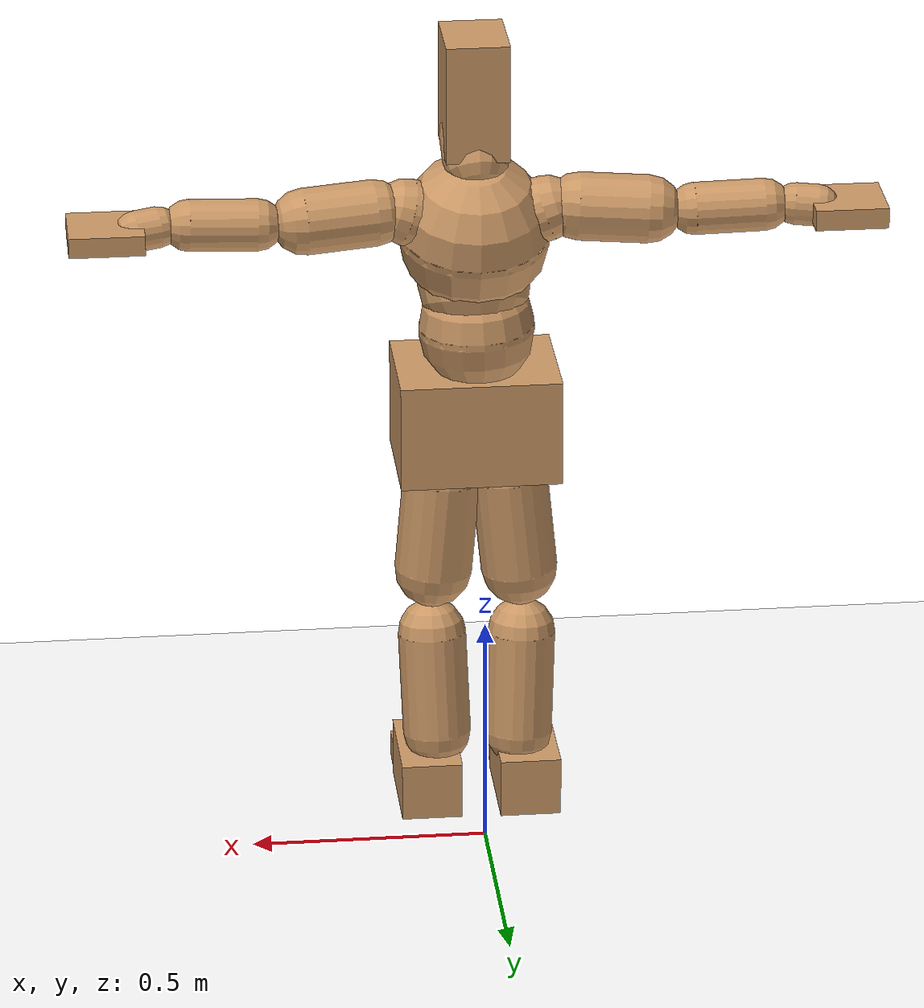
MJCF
<mujoco model="humanoid">
  <option integrator="implicitfast" />

  <visual>
    <global offwidth="1280" offheight="960" />
    <headlight active="1" ambient="0.34 0.34 0.34" diffuse="0.5 0.5 0.5" />
  </visual>

  <default>
    <joint damping="2" stiffness="2" armature="0.01" limited="true" solimplimit="0 .99 .01" />
    <geom condim="1" friction="0.7 0.005 0.0001" solimp=".99 .99 .003" solref="0.015 1" margin="0.001" rgba="0.8 0.6 .4 1" />
    <default class="smplcontact">
      <geom condim="3" friction="1. 0.005 0.0001" solref="0.015 1" solimp="0.98 0.98 0.001" priority="1" />
    </default>
    <default class="stiff_medium">
      <joint stiffness="10" />
    </default>
    <default class="stiff_medium_higher">
      <joint stiffness="50" />
    </default>
    <default class="stiff_high">
      <joint stiffness="100" />
    </default>
  </default>

  <asset>
    <texture type="skybox" builtin="gradient" rgb1="0.99 0.99 0.99" rgb2="0.608 0.828 0.892" width="100" />
    <texture builtin="flat" height="1278" mark="cross" markrgb="1 1 1" name="texgeom" random="0.01" rgb1="0.8 0.6 0.4" rgb2="0.8 0.6 0.4" type="cube" width="127" />
    <texture name="texplane" type="2d" builtin="checker" markrgb="1 1 1" rgb1="0.756 0.772 0.76" rgb2="0.6 0.6 0.6" width="100" height="100" />
    <material name="MatPlane" reflectance="0.5" texture="texplane" texrepeat="1 1" texuniform="true" />
    <material name="geom" texture="texgeom" texuniform="true" />
  </asset>

  <worldbody>
    <light name="tracking_light" pos="0 0 7" dir="0 0 -1" directional="true" cutoff="100" exponent="1" diffuse="1 1 1" specular="0.1 0.1 0.1" mode="trackcom" />
    <camera name="back" pos="0 3 2.4" xyaxes="-1 0 0 0 -1 2" mode="trackcom" />
    <camera name="side" pos="-3 0 2.4" xyaxes="0 -1 0 1 0 2" mode="trackcom" />
    <camera name="front_side" pos="-2.8 -2.8 0.8" xyaxes="0.5 -0.5 0 0.1 0.1 1" mode="trackcom" />
    <geom condim="3" name="floor" pos="0 0 0" rgba="1 1 1 1" size="100 100 .2" type="plane" material="MatPlane" />
    <body name="Pelvis" pos="-0.0018 -0.2233 0.908985" euler="90 0 0">
      <site name="Pelvis" size="0.01" />
      <freejoint name="Pelvis" />
      <geom type="box" pos="-0.0000 -0.0121 -0.0055" size="0.17104 0.11552 0.1328" quat="1.0000 0.0000 0.0000 0.0000" density="3165.830099" name="Pelvis" />
      <body name="L_Hip" pos="0.066025 -0.08683 -0.00646">
        <joint name="L_Hip_x" type="hinge" pos="0 0 0" axis="1 0 0" stiffness="15.6257" range="-160.0 22.92" class="stiff_medium" damping="23.4385" armature="0.0156257" />
        <joint name="L_Hip_y" type="hinge" pos="0 0 0" axis="0 1 0" stiffness="15.6257" range="-70.0 70.0" class="stiff_medium" damping="15.6257" armature="0.0156257" />
        <joint name="L_Hip_z" type="hinge" pos="0 0 0" axis="0 0 1" stiffness="15.6257" range="-28.65 90.0" class="stiff_medium" damping="15.6257" armature="0.0156257" />
        <geom type="capsule" density="2040.816327" fromto="0.006555 -0.07125 -0.000855 0.02603 -0.28519 -0.00342" size="0.083025" name="L_Hip" />
        <body name="L_Knee" pos="0.032585 -0.35644 -0.004275">
          <joint name="L_Knee_x" type="hinge" pos="0 0 0" axis="1 0 0" range="-5.16 171.89" damping="12.5005" stiffness="3.12513" armature="0.0156257" />
          <joint name="L_Knee_y" type="hinge" pos="0 0 0" axis="0 1 0" range="-4.58 6.88" damping="12.5005" stiffness="3.12513" armature="0.0156257" />
          <joint name="L_Knee_z" type="hinge" pos="0 0 0" axis="0 0 1" range="-6.88 4.58" damping="12.5005" stiffness="3.12513" armature="0.0156257" />
          <geom type="capsule" density="1234.567901" fromto="-0.002565 -0.07562 -0.008265 -0.010355 -0.30248 -0.03325" size="0.073035" name="L_Knee" />
          <body name="L_Ankle" pos="-0.01292 -0.3781 -0.041515">
            <joint name="L_Ankle_x" type="hinge" pos="0 0 0" axis="1 0 0" range="-45.84 45.84" class="stiff_medium" damping="9.3754" stiffness="15.6257" armature="0.0156257" />
            <joint name="L_Ankle_y" type="hinge" pos="0 0 0" axis="0 1 0" range="-74.48 22.92" class="stiff_medium" damping="4.6877" stiffness="15.6257" armature="0.0156257" />
            <joint name="L_Ankle_z" type="hinge" pos="0 0 0" axis="0 0 1" range="-4.58 4.58" class="stiff_medium" damping="9.3754" stiffness="15.6257" armature="0.0156257" />
            <geom type="box" pos="0.022135 -0.022705 0.02299" size="0.065205 0.06264 0.11475" quat="1.0000 0.0000 0.0000 0.0000" density="449.071558" name="L_Ankle" class="smplcontact" />
            <body name="L_Toe" pos="0.02508 -0.05301 0.113335">
              <joint name="L_Toe_x" type="hinge" pos="0 0 0" axis="1 0 0" range="-91.67 22.92" stiffness="3.12513" armature="0.0156257" />
              <joint name="L_Toe_y" type="hinge" pos="0 0 0" axis="0 1 0" range="-4.58 4.58" stiffness="3.12513" armature="0.0156257" />
              <joint name="L_Toe_z" type="hinge" pos="0 0 0" axis="0 0 1" range="-4.58 4.58" stiffness="3.12513" armature="0.0156257" />
              <geom type="box" pos="-0.00285 0.005225 0.02356" size="0.06453 0.027 0.06696" quat="1.0000 0.0000 0.0000 0.0000" density="423.206892" name="L_Toe" class="smplcontact" />
            </body>
          </body>
        </body>
      </body>
      <body name="R_Hip" pos="-0.064315 -0.085975 -0.004085">
        <joint name="R_Hip_x" type="hinge" pos="0 0 0" axis="1 0 0" stiffness="15.6257" range="-160.0 22.92" class="stiff_medium" damping="23.4385" armature="0.0156257" />
        <joint name="R_Hip_y" type="hinge" pos="0 0 0" axis="0 1 0" stiffness="15.6257" range="-70.0 70.0" class="stiff_medium" damping="15.6257" armature="0.0156257" />
        <joint name="R_Hip_z" type="hinge" pos="0 0 0" axis="0 0 1" stiffness="15.6257" range="-90.0 28.65" class="stiff_medium" damping="15.6257" armature="0.0156257" />
        <geom type="capsule" density="2040.816327" fromto="-0.007315 -0.072675 -0.00171 -0.02907 -0.290795 -0.006745" size="0.08181" name="R_Hip" />
        <body name="R_Knee" pos="-0.036385 -0.36347 -0.008455">
          <joint name="R_Knee_x" type="hinge" pos="0 0 0" axis="1 0 0" range="-5.16 171.89" damping="12.5005" stiffness="3.12513" armature="0.0156257" />
          <joint name="R_Knee_y" type="hinge" pos="0 0 0" axis="0 1 0" range="-6.88 4.58" damping="12.5005" stiffness="3.12513" armature="0.0156257" />
          <joint name="R_Knee_z" type="hinge" pos="0 0 0" axis="0 0 1" range="-4.58 6.88" damping="12.5005" stiffness="3.12513" armature="0.0156257" />
          <geom type="capsule" density="1234.567901" fromto="0.00304 -0.075715 -0.008075 0.01197 -0.302765 -0.03211" size="0.073035" name="R_Knee" />
          <body name="R_Ankle" pos="0.01501 -0.37848 -0.040185">
            <joint name="R_Ankle_x" type="hinge" pos="0 0 0" axis="1 0 0" range="-45.84 45.84" class="stiff_medium" damping="9.3754" stiffness="15.6257" armature="0.0156257" />
            <joint name="R_Ankle_y" type="hinge" pos="0 0 0" axis="0 1 0" range="-22.92 74.48" class="stiff_medium" damping="4.6877" stiffness="15.6257" armature="0.0156257" />
            <joint name="R_Ankle_z" type="hinge" pos="0 0 0" axis="0 0 1" range="-4.58 4.58" class="stiff_medium" damping="9.3754" stiffness="15.6257" armature="0.0156257" />
            <geom type="box" pos="-0.02014 -0.01653 0.02432" size="0.065205 0.06453 0.116775" quat="1.0000 0.0000 0.0000 0.0000" density="434.700981" name="R_Ankle" class="smplcontact" />
            <body name="R_Toe" pos="-0.02413 -0.045695 0.117135">
              <joint name="R_Toe_x" type="hinge" pos="0 0 0" axis="1 0 0" range="-91.67 22.92" stiffness="3.12513" armature="0.0156257" />
              <joint name="R_Toe_y" type="hinge" pos="0 0 0" axis="0 1 0" range="-4.58 4.58" stiffness="3.12513" armature="0.0156257" />
              <joint name="R_Toe_z" type="hinge" pos="0 0 0" axis="0 0 1" range="-4.58 4.58" stiffness="3.12513" armature="0.0156257" />
              <geom type="box" pos="0.00399 0.004275 0.021565" size="0.064665 0.02916 0.066555" quat="1.0000 0.0000 0.0000 0.0000" density="407.384095" name="R_Toe" class="smplcontact" />
            </body>
          </body>
        </body>
      </body>
      <body name="Torso" pos="-0.00275 0.1199 -0.02937">
        <joint name="Torso_x" type="hinge" pos="0 0 0" axis="1 0 0" range="-25.78 57.3" class="stiff_medium" damping="51.1104" stiffness="34.0736" armature="0.0340736" />
        <joint name="Torso_y" type="hinge" pos="0 0 0" axis="0 1 0" range="-57.3 57.3" class="stiff_high" damping="68.1472" stiffness="340.736" armature="0.0340736" />
        <joint name="Torso_z" type="hinge" pos="0 0 0" axis="0 0 1" range="-34.38 34.38" class="stiff_high" damping="68.1472" stiffness="340.736" armature="0.0340736" />
        <geom type="capsule" density="2040.816327" fromto="0.00275 0.06688 0.00055 0.0033 0.08173 0.00066" size="0.12304" name="Torso" />
        <body name="Spine" pos="0.00605 0.14872 0.00121">
          <joint name="Spine_x" type="hinge" pos="0 0 0" axis="1 0 0" stiffness="34.0736" range="-25.78 57.3" class="stiff_medium" damping="51.1104" armature="0.0340736" />
          <joint name="Spine_y" type="hinge" pos="0 0 0" axis="0 1 0" stiffness="34.0736" range="-57.3 57.3" class="stiff_high" damping="27.2589" armature="0.0340736" />
          <joint name="Spine_z" type="hinge" pos="0 0 0" axis="0 0 1" stiffness="68.1472" range="-34.38 34.38" class="stiff_high" damping="40.8883" armature="0.0340736" />
          <geom type="capsule" density="2040.816327" fromto="0.00077 0.02618 0.01254 0.00088 0.03201 0.0154" size="0.1208" name="Spine" />
          <body name="Chest" pos="0.00165 0.05819 0.02794">
            <joint name="Chest_x" type="hinge" pos="0 0 0" axis="1 0 0" stiffness="34.0736" range="-25.78 57.3" class="stiff_medium" damping="51.1104" armature="0.0340736" />
            <joint name="Chest_y" type="hinge" pos="0 0 0" axis="0 1 0" stiffness="34.0736" range="-57.3 57.3" class="stiff_high" damping="27.2589" armature="0.0340736" />
            <joint name="Chest_z" type="hinge" pos="0 0 0" axis="0 0 1" stiffness="68.1472" range="-34.38 34.38" class="stiff_high" damping="40.8883" armature="0.0340736" />
            <geom type="capsule" density="2040.816327" fromto="-0.00099 0.07502 -0.01903 -0.0011 0.09163 -0.02332" size="0.16032" name="Chest" />
            <body name="Neck" pos="-0.00308 0.23529 -0.04719">
              <joint name="Neck_x" type="hinge" pos="0 0 0" axis="1 0 0" range="-28.65 57.3" class="stiff_medium_higher" damping="34.0736" stiffness="170.368" armature="0.0340736" />
              <joint name="Neck_y" type="hinge" pos="0 0 0" axis="0 1 0" range="-40.11 40.11" class="stiff_medium_higher" damping="34.0736" stiffness="170.368" armature="0.0340736" />
              <joint name="Neck_z" type="hinge" pos="0 0 0" axis="0 0 1" range="-40.11 40.11" class="stiff_medium_higher" damping="34.0736" stiffness="170.368" armature="0.0340736" />
              <geom type="capsule" density="1000" fromto="0.0011 0.0143 0.01133 0.00451 0.0572 0.04521" size="0.06976" name="Neck" />
              <body name="Head" pos="0.0052 0.065 0.0513">
                <joint name="Head_x" type="hinge" pos="0 0 0" axis="1 0 0" range="-28.65 57.3" class="stiff_medium_higher" damping="2.42" stiffness="60.5" armature="0.0121" />
                <joint name="Head_y" type="hinge" pos="0 0 0" axis="0 1 0" range="-40.11 40.11" class="stiff_medium_higher" damping="2.42" stiffness="60.5" armature="0.0121" />
                <joint name="Head_z" type="hinge" pos="0 0 0" axis="0 0 1" range="-40.11 40.11" class="stiff_medium_higher" damping="2.42" stiffness="60.5" armature="0.0121" />
                <geom type="box" pos="-0.0042 0.0876 -0.0116" size="0.06666 0.12694 0.0836" quat="1.0000 0.0000 0.0000 0.0000" density="1018.069894" name="Head" />
                <geom type="capsule" name="nose" size="0.022 0.011" pos="0 0.07 0.05" quat="1 0 0 0" mass="0" contype="0" conaffinity="0" />
              </body>
            </body>
            <body name="L_Thorax" pos="0.07486 0.115615 -0.032395">
              <joint name="L_Thorax_x" type="hinge" pos="0 0 0" axis="1 0 0" range="-10.89 4.58" class="stiff_medium_higher" damping="31.2513" stiffness="78.1283" armature="0.0156257" />
              <joint name="L_Thorax_y" type="hinge" pos="0 0 0" axis="0 1 0" range="-28.65 17.19" class="stiff_medium_higher" damping="31.2513" stiffness="78.1283" armature="0.0156257" />
              <joint name="L_Thorax_z" type="hinge" pos="0 0 0" axis="0 0 1" range="-31.51 40.11" class="stiff_medium_higher" damping="31.2513" stiffness="78.1283" armature="0.0156257" />
              <geom type="capsule" density="1000" fromto="0.01729 0.005795 -0.00171 0.06916 0.02318 -0.006745" size="0.070335" name="L_Thorax" />
              <body name="L_Shoulder" pos="0.08645 0.028975 -0.008455">
                <joint name="L_Shoulder_x" type="hinge" pos="0 0 0" axis="1 0 0" range="-97.4 97.4" class="stiff_medium" damping="9.3754" stiffness="15.6257" armature="0.0156257" />
                <joint name="L_Shoulder_y" type="hinge" pos="0 0 0" axis="0 1 0" range="-108.86 80.21" class="stiff_medium" damping="9.3754" stiffness="15.6257" armature="0.0156257" />
                <joint name="L_Shoulder_z" type="hinge" pos="0 0 0" axis="0 0 1" range="-97.4 85.94" class="stiff_medium" damping="9.3754" stiffness="15.6257" armature="0.0156257" />
                <geom type="capsule" density="1000" fromto="0.049305 -0.00247 -0.005225 0.197315 -0.00969 -0.0209" size="0.069795" name="L_Shoulder" />
                <body name="L_Elbow" pos="0.24662 -0.01216 -0.026125">
                  <joint name="L_Elbow_x" type="hinge" pos="0 0 0" axis="1 0 0" range="-17.19 4.58" damping="7.81283" stiffness="3.12513" armature="0.0156257" />
                  <joint name="L_Elbow_y" type="hinge" pos="0 0 0" axis="0 1 0" range="-180.0 17.19" damping="7.81283" stiffness="3.12513" armature="0.0156257" />
                  <joint name="L_Elbow_z" type="hinge" pos="0 0 0" axis="0 0 1" range="-100.84 4.58" damping="7.81283" stiffness="3.12513" armature="0.0156257" />
                  <geom type="capsule" density="1000" fromto="0.04731 0.00171 -0.00019 0.18943 0.00684 -0.000855" size="0.054675" name="L_Elbow" />
                  <body name="L_Wrist" pos="0.23674 0.00855 -0.00114">
                    <joint name="L_Wrist_x" type="hinge" pos="0 0 0" axis="1 0 0" range="-180.0 22.92" stiffness="3.12513" armature="0.0156257" />
                    <joint name="L_Wrist_y" type="hinge" pos="0 0 0" axis="0 1 0" range="-17.19 17.19" stiffness="3.12513" armature="0.0156257" />
                    <joint name="L_Wrist_z" type="hinge" pos="0 0 0" axis="0 0 1" range="-22.92 22.92" stiffness="3.12513" armature="0.0156257" />
                    <geom type="capsule" density="1000" fromto="0.01596 -0.00152 -0.00285 0.06384 -0.006175 -0.0114" size="0.04293" name="L_Wrist" class="smplcontact" />
                    <body name="L_Hand" pos="0.0798 -0.00779 -0.014155">
                      <joint name="L_Hand_x" type="hinge" pos="0 0 0" axis="1 0 0" range="-17.19 17.19" stiffness="3.12513" armature="0.0156257" />
                      <joint name="L_Hand_y" type="hinge" pos="0 0 0" axis="0 1 0" range="-51.57 51.57" stiffness="3.12513" armature="0.0156257" />
                      <joint name="L_Hand_z" type="hinge" pos="0 0 0" axis="0 0 1" range="-91.67 91.67" stiffness="3.12513" armature="0.0156257" />
                      <geom type="box" pos="0.046835 0.00095 -0.00551" size="0.078975 0.02133 0.07263" quat="1.0000 0.0000 0.0000 0.0000" density="400.552564" name="L_Hand" class="smplcontact" />
                    </body>
                  </body>
                </body>
              </body>
            </body>
            <body name="R_Thorax" pos="-0.07771 0.11286 -0.03667">
              <joint name="R_Thorax_x" type="hinge" pos="0 0 0" axis="1 0 0" range="-10.89 4.58" class="stiff_medium_higher" damping="31.2513" stiffness="78.1283" armature="0.0156257" />
              <joint name="R_Thorax_y" type="hinge" pos="0 0 0" axis="0 1 0" range="-17.19 28.65" class="stiff_medium_higher" damping="31.2513" stiffness="78.1283" armature="0.0156257" />
              <joint name="R_Thorax_z" type="hinge" pos="0 0 0" axis="0 0 1" range="-40.11 31.51" class="stiff_medium_higher" damping="31.2513" stiffness="78.1283" armature="0.0156257" />
              <geom type="capsule" density="1000" fromto="-0.01824 0.006175 -0.00171 -0.07296 0.0247 -0.006935" size="0.068985" name="R_Thorax" />
              <body name="R_Shoulder" pos="-0.0912 0.03097 -0.008645">
                <joint name="R_Shoulder_x" type="hinge" pos="0 0 0" axis="1 0 0" range="-97.4 97.4" class="stiff_medium" damping="9.3754" stiffness="15.6257" armature="0.0156257" />
                <joint name="R_Shoulder_y" type="hinge" pos="0 0 0" axis="0 1 0" range="-80.21 108.86" class="stiff_medium" damping="9.3754" stiffness="15.6257" armature="0.0156257" />
                <joint name="R_Shoulder_z" type="hinge" pos="0 0 0" axis="0 0 1" range="-85.94 97.4" class="stiff_medium" damping="9.3754" stiffness="15.6257" armature="0.0156257" />
                <geom type="capsule" density="1000" fromto="-0.048165 -0.002565 -0.004085 -0.19285 -0.010165 -0.016245" size="0.071685" name="R_Shoulder" />
                <body name="R_Elbow" pos="-0.241015 -0.012635 -0.02033">
                  <joint name="R_Elbow_x" type="hinge" pos="0 0 0" axis="1 0 0" range="-17.19 4.58" damping="7.81283" stiffness="3.12513" armature="0.0156257" />
                  <joint name="R_Elbow_y" type="hinge" pos="0 0 0" axis="0 1 0" range="-17.19 180.0" damping="7.81283" stiffness="3.12513" armature="0.0156257" />
                  <joint name="R_Elbow_z" type="hinge" pos="0 0 0" axis="0 0 1" range="-4.58 100.84" damping="7.81283" stiffness="3.12513" armature="0.0156257" />
                  <geom type="capsule" density="1000" fromto="-0.048545 0.00152 -0.001045 -0.19399 0.00589 -0.00418" size="0.05508" name="R_Elbow" />
                  <body name="R_Wrist" pos="-0.242535 0.00741 -0.00532">
                    <joint name="R_Wrist_x" type="hinge" pos="0 0 0" axis="1 0 0" range="-180.0 22.92" stiffness="3.12513" armature="0.0156257" />
                    <joint name="R_Wrist_y" type="hinge" pos="0 0 0" axis="0 1 0" range="-17.19 17.19" stiffness="3.12513" armature="0.0156257" />
                    <joint name="R_Wrist_z" type="hinge" pos="0 0 0" axis="0 0 1" range="-22.92 22.92" stiffness="3.12513" armature="0.0156257" />
                    <geom type="capsule" density="1000" fromto="-0.016055 -0.00114 -0.001995 -0.064315 -0.004655 -0.007885" size="0.04401" name="R_Wrist" class="smplcontact" />
                    <body name="R_Hand" pos="-0.08037 -0.005795 -0.009785">
                      <joint name="R_Hand_x" type="hinge" pos="0 0 0" axis="1 0 0" range="-17.19 17.19" stiffness="3.12513" armature="0.0156257" />
                      <joint name="R_Hand_y" type="hinge" pos="0 0 0" axis="0 1 0" range="-51.57 51.57" stiffness="3.12513" armature="0.0156257" />
                      <joint name="R_Hand_z" type="hinge" pos="0 0 0" axis="0 0 1" range="-91.67 91.67" stiffness="3.12513" armature="0.0156257" />
                      <geom type="box" pos="-0.04389 -0.000855 -0.007505" size="0.076815 0.02214 0.07371" quat="1.0000 0.0000 0.0000 0.0000" density="403.679611" name="R_Hand" class="smplcontact" />
                    </body>
                  </body>
                </body>
              </body>
            </body>
          </body>
        </body>
      </body>
    </body>
  </worldbody>
  <actuator>
    <general name="L_Hip_x" joint="L_Hip_x" biastype="affine" gainprm="287.33006409732246" biasprm="-215.3247604770444 -180 -2.0" ctrllimited="true" ctrlrange="-1 1" forcerange="-360 360" />
    <general name="L_Hip_y" joint="L_Hip_y" biastype="affine" gainprm="219.9114857512855" biasprm="0.0 -180 -2.0" ctrllimited="true" ctrlrange="-1 1" forcerange="-360 360" />
    <general name="L_Hip_z" joint="L_Hip_z" biastype="affine" gainprm="186.3749841742145" biasprm="96.3683546488669 -180 -2.0" ctrllimited="true" ctrlrange="-1 1" forcerange="-360 360" />
    <general name="L_Knee_x" joint="L_Knee_x" biastype="affine" gainprm="278.10948965903646" biasprm="261.8988715665131 -180 -2.0" ctrllimited="true" ctrlrange="-1 1" forcerange="-360 360" />
    <general name="L_Knee_y" joint="L_Knee_y" biastype="affine" gainprm="18.001325905069514" biasprm="3.612831551628262 -180 -2.0" ctrllimited="true" ctrlrange="-1 1" forcerange="-360 360" />
    <general name="L_Knee_z" joint="L_Knee_z" biastype="affine" gainprm="18.001325905069514" biasprm="-3.612831551628262 -180 -2.0" ctrllimited="true" ctrlrange="-1 1" forcerange="-360 360" />
    <general name="L_Ankle_x" joint="L_Ankle_x" biastype="affine" gainprm="72.00530362027807" biasprm="0.0 -90 -2.0" ctrllimited="true" ctrlrange="-1 1" forcerange="-180 180" />
    <general name="L_Ankle_y" joint="L_Ankle_y" biastype="affine" gainprm="76.49778111491148" biasprm="-40.49512930477244 -90 -2.0" ctrllimited="true" ctrlrange="-1 1" forcerange="-180 180" />
    <general name="L_Ankle_z" joint="L_Ankle_z" biastype="affine" gainprm="7.1942471767206255" biasprm="0.0 -90 -2.0" ctrllimited="true" ctrlrange="-1 1" forcerange="-180 180" />
    <general name="L_Toe_x" joint="L_Toe_x" biastype="affine" gainprm="71.99902043497087" biasprm="-43.19689898685965 -72 -0.8" ctrllimited="true" ctrlrange="-1 1" forcerange="-144 144" />
    <general name="L_Toe_y" joint="L_Toe_y" biastype="affine" gainprm="5.755397741376501" biasprm="0.0 -72 -0.8" ctrllimited="true" ctrlrange="-1 1" forcerange="-144 144" />
    <general name="L_Toe_z" joint="L_Toe_z" biastype="affine" gainprm="5.755397741376501" biasprm="0.0 -72 -0.8" ctrllimited="true" ctrlrange="-1 1" forcerange="-144 144" />
    <general name="R_Hip_x" joint="R_Hip_x" biastype="affine" gainprm="287.33006409732246" biasprm="-215.3247604770444 -180 -2.0" ctrllimited="true" ctrlrange="-1 1" forcerange="-360 360" />
    <general name="R_Hip_y" joint="R_Hip_y" biastype="affine" gainprm="219.9114857512855" biasprm="0.0 -180 -2.0" ctrllimited="true" ctrlrange="-1 1" forcerange="-360 360" />
    <general name="R_Hip_z" joint="R_Hip_z" biastype="affine" gainprm="186.3749841742145" biasprm="-96.3683546488669 -180 -2.0" ctrllimited="true" ctrlrange="-1 1" forcerange="-360 360" />
    <general name="R_Knee_x" joint="R_Knee_x" biastype="affine" gainprm="278.10948965903646" biasprm="261.8988715665131 -180 -2.0" ctrllimited="true" ctrlrange="-1 1" forcerange="-360 360" />
    <general name="R_Knee_y" joint="R_Knee_y" biastype="affine" gainprm="18.001325905069514" biasprm="-3.612831551628262 -180 -2.0" ctrllimited="true" ctrlrange="-1 1" forcerange="-360 360" />
    <general name="R_Knee_z" joint="R_Knee_z" biastype="affine" gainprm="18.001325905069514" biasprm="3.612831551628262 -180 -2.0" ctrllimited="true" ctrlrange="-1 1" forcerange="-360 360" />
    <general name="R_Ankle_x" joint="R_Ankle_x" biastype="affine" gainprm="72.00530362027807" biasprm="0.0 -90 -2.0" ctrllimited="true" ctrlrange="-1 1" forcerange="-180 180" />
    <general name="R_Ankle_y" joint="R_Ankle_y" biastype="affine" gainprm="76.49778111491148" biasprm="40.49512930477244 -90 -2.0" ctrllimited="true" ctrlrange="-1 1" forcerange="-180 180" />
    <general name="R_Ankle_z" joint="R_Ankle_z" biastype="affine" gainprm="7.1942471767206255" biasprm="0.0 -90 -2.0" ctrllimited="true" ctrlrange="-1 1" forcerange="-180 180" />
    <general name="R_Toe_x" joint="R_Toe_x" biastype="affine" gainprm="71.99902043497087" biasprm="-43.19689898685965 -72 -0.8" ctrllimited="true" ctrlrange="-1 1" forcerange="-144 144" />
    <general name="R_Toe_y" joint="R_Toe_y" biastype="affine" gainprm="5.755397741376501" biasprm="0.0 -72 -0.8" ctrllimited="true" ctrlrange="-1 1" forcerange="-144 144" />
    <general name="R_Toe_z" joint="R_Toe_z" biastype="affine" gainprm="5.755397741376501" biasprm="0.0 -72 -0.8" ctrllimited="true" ctrlrange="-1 1" forcerange="-144 144" />
    <general name="Torso_x" joint="Torso_x" biastype="affine" gainprm="174.00234510682668" biasprm="66.0153336274335 -240 -4.0" ctrllimited="true" ctrlrange="-1 1" forcerange="-360 360" />
    <general name="Torso_y" joint="Torso_y" biastype="affine" gainprm="240.0176787342602" biasprm="0.0 -240 -4.0" ctrllimited="true" ctrlrange="-1 1" forcerange="-360 360" />
    <general name="Torso_z" joint="Torso_z" biastype="affine" gainprm="144.01060724055614" biasprm="0.0 -240 -4.0" ctrllimited="true" ctrlrange="-1 1" forcerange="-360 360" />
    <general name="Spine_x" joint="Spine_x" biastype="affine" gainprm="174.00234510682668" biasprm="66.0153336274335 -240 -4.0" ctrllimited="true" ctrlrange="-1 1" forcerange="-360 360" />
    <general name="Spine_y" joint="Spine_y" biastype="affine" gainprm="240.0176787342602" biasprm="0.0 -240 -4.0" ctrllimited="true" ctrlrange="-1 1" forcerange="-360 360" />
    <general name="Spine_z" joint="Spine_z" biastype="affine" gainprm="144.01060724055614" biasprm="0.0 -240 -4.0" ctrllimited="true" ctrlrange="-1 1" forcerange="-360 360" />
    <general name="Chest_x" joint="Chest_x" biastype="affine" gainprm="174.00234510682668" biasprm="66.0153336274335 -240 -4.0" ctrllimited="true" ctrlrange="-1 1" forcerange="-360 360" />
    <general name="Chest_y" joint="Chest_y" biastype="affine" gainprm="240.0176787342602" biasprm="0.0 -240 -4.0" ctrllimited="true" ctrlrange="-1 1" forcerange="-360 360" />
    <general name="Chest_z" joint="Chest_z" biastype="affine" gainprm="144.01060724055614" biasprm="0.0 -240 -4.0" ctrllimited="true" ctrlrange="-1 1" forcerange="-360 360" />
    <general name="Neck_x" joint="Neck_x" biastype="affine" gainprm="27.00198885760427" biasprm="9.000662952534757 -36 -0.8" ctrllimited="true" ctrlrange="-1 1" forcerange="-72 72" />
    <general name="Neck_y" joint="Neck_y" biastype="affine" gainprm="25.20185626709732" biasprm="0.0 -36 -0.8" ctrllimited="true" ctrlrange="-1 1" forcerange="-72 72" />
    <general name="Neck_z" joint="Neck_z" biastype="affine" gainprm="25.20185626709732" biasprm="0.0 -36 -0.8" ctrllimited="true" ctrlrange="-1 1" forcerange="-72 72" />
    <general name="Head_x" joint="Head_x" biastype="affine" gainprm="18.001325905069514" biasprm="6.000441968356505 -24 -0.8" ctrllimited="true" ctrlrange="-1 1" forcerange="-48 48" />
    <general name="Head_y" joint="Head_y" biastype="affine" gainprm="16.801237511398213" biasprm="0.0 -24 -0.8" ctrllimited="true" ctrlrange="-1 1" forcerange="-48 48" />
    <general name="Head_z" joint="Head_z" biastype="affine" gainprm="16.801237511398213" biasprm="0.0 -24 -0.8" ctrllimited="true" ctrlrange="-1 1" forcerange="-48 48" />
    <general name="L_Thorax_x" joint="L_Thorax_x" biastype="affine" gainprm="16.200146117011364" biasprm="-6.6078165480505335 -120 -1.6" ctrllimited="true" ctrlrange="-1 1" forcerange="-240 240" />
    <general name="L_Thorax_y" joint="L_Thorax_y" biastype="affine" gainprm="48.00353574685204" biasprm="-12.00088393671301 -120 -1.6" ctrllimited="true" ctrlrange="-1 1" forcerange="-240 240" />
    <general name="L_Thorax_z" joint="L_Thorax_z" biastype="affine" gainprm="75.00028861670033" biasprm="9.00589894029074 -120 -1.6" ctrllimited="true" ctrlrange="-1 1" forcerange="-240 240" />
    <general name="L_Shoulder_x" joint="L_Shoulder_x" biastype="affine" gainprm="81.5976331892389" biasprm="0.0 -48 -1.6" ctrllimited="true" ctrlrange="-1 1" forcerange="-96 96" />
    <general name="L_Shoulder_y" joint="L_Shoulder_y" biastype="affine" gainprm="79.19745640189629" biasprm="-12.00088393671301 -48 -1.6" ctrllimited="true" ctrlrange="-1 1" forcerange="-96 96" />
    <general name="L_Shoulder_z" joint="L_Shoulder_z" biastype="affine" gainprm="76.79727961455369" biasprm="-4.800353574685214 -48 -1.6" ctrllimited="true" ctrlrange="-1 1" forcerange="-96 96" />
    <general name="L_Elbow_x" joint="L_Elbow_x" biastype="affine" gainprm="13.67849441372996" biasprm="-7.923096672353461 -72 -0.8" ctrllimited="true" ctrlrange="-1 1" forcerange="-144 144" />
    <general name="L_Elbow_y" joint="L_Elbow_y" biastype="affine" gainprm="123.89813107227425" biasprm="-102.29653998619085 -72 -0.8" ctrllimited="true" ctrlrange="-1 1" forcerange="-144 144" />
    <general name="L_Elbow_z" joint="L_Elbow_z" biastype="affine" gainprm="66.23733950828719" biasprm="-60.4819417669107 -72 -0.8" ctrllimited="true" ctrlrange="-1 1" forcerange="-144 144" />
    <general name="L_Wrist_x" joint="L_Wrist_x" biastype="affine" gainprm="21.24973270888136" biasprm="-16.449379134196157 -12 -0.8" ctrllimited="true" ctrlrange="-1 1" forcerange="-24 24" />
    <general name="L_Wrist_y" joint="L_Wrist_y" biastype="affine" gainprm="3.6002651810139037" biasprm="0.0 -12 -0.8" ctrllimited="true" ctrlrange="-1 1" forcerange="-24 24" />
    <general name="L_Wrist_z" joint="L_Wrist_z" biastype="affine" gainprm="4.800353574685205" biasprm="0.0 -12 -0.8" ctrllimited="true" ctrlrange="-1 1" forcerange="-24 24" />
    <general name="L_Hand_x" joint="L_Hand_x" biastype="affine" gainprm="3.6002651810139037" biasprm="0.0 -12 -0.8" ctrllimited="true" ctrlrange="-1 1" forcerange="-24 24" />
    <general name="L_Hand_y" joint="L_Hand_y" biastype="affine" gainprm="10.800795543041708" biasprm="0.0 -12 -0.8" ctrllimited="true" ctrlrange="-1 1" forcerange="-24 24" />
    <general name="L_Hand_z" joint="L_Hand_z" biastype="affine" gainprm="19.199319903638422" biasprm="0.0 -12 -0.8" ctrllimited="true" ctrlrange="-1 1" forcerange="-24 24" />
    <general name="R_Thorax_x" joint="R_Thorax_x" biastype="affine" gainprm="16.200146117011364" biasprm="-6.6078165480505335 -120 -1.6" ctrllimited="true" ctrlrange="-1 1" forcerange="-240 240" />
    <general name="R_Thorax_y" joint="R_Thorax_y" biastype="affine" gainprm="48.00353574685204" biasprm="12.000883936713002 -120 -1.6" ctrllimited="true" ctrlrange="-1 1" forcerange="-240 240" />
    <general name="R_Thorax_z" joint="R_Thorax_z" biastype="affine" gainprm="75.00028861670033" biasprm="-9.00589894029074 -120 -1.6" ctrllimited="true" ctrlrange="-1 1" forcerange="-240 240" />
    <general name="R_Shoulder_x" joint="R_Shoulder_x" biastype="affine" gainprm="81.5976331892389" biasprm="0.0 -48 -1.6" ctrllimited="true" ctrlrange="-1 1" forcerange="-96 96" />
    <general name="R_Shoulder_y" joint="R_Shoulder_y" biastype="affine" gainprm="79.19745640189629" biasprm="12.00088393671301 -48 -1.6" ctrllimited="true" ctrlrange="-1 1" forcerange="-96 96" />
    <general name="R_Shoulder_z" joint="R_Shoulder_z" biastype="affine" gainprm="76.79727961455369" biasprm="4.800353574685204 -48 -1.6" ctrllimited="true" ctrlrange="-1 1" forcerange="-96 96" />
    <general name="R_Elbow_x" joint="R_Elbow_x" biastype="affine" gainprm="13.67849441372996" biasprm="-7.923096672353461 -72 -0.8" ctrllimited="true" ctrlrange="-1 1" forcerange="-144 144" />
    <general name="R_Elbow_y" joint="R_Elbow_y" biastype="affine" gainprm="123.89813107227425" biasprm="102.29653998619085 -72 -0.8" ctrllimited="true" ctrlrange="-1 1" forcerange="-144 144" />
    <general name="R_Elbow_z" joint="R_Elbow_z" biastype="affine" gainprm="66.23733950828719" biasprm="60.481941766910694 -72 -0.8" ctrllimited="true" ctrlrange="-1 1" forcerange="-144 144" />
    <general name="R_Wrist_x" joint="R_Wrist_x" biastype="affine" gainprm="21.24973270888136" biasprm="-16.449379134196157 -12 -0.8" ctrllimited="true" ctrlrange="-1 1" forcerange="-24 24" />
    <general name="R_Wrist_y" joint="R_Wrist_y" biastype="affine" gainprm="3.6002651810139037" biasprm="0.0 -12 -0.8" ctrllimited="true" ctrlrange="-1 1" forcerange="-24 24" />
    <general name="R_Wrist_z" joint="R_Wrist_z" biastype="affine" gainprm="4.800353574685205" biasprm="0.0 -12 -0.8" ctrllimited="true" ctrlrange="-1 1" forcerange="-24 24" />
    <general name="R_Hand_x" joint="R_Hand_x" biastype="affine" gainprm="3.6002651810139037" biasprm="0.0 -12 -0.8" ctrllimited="true" ctrlrange="-1 1" forcerange="-24 24" />
    <general name="R_Hand_y" joint="R_Hand_y" biastype="affine" gainprm="10.800795543041708" biasprm="0.0 -12 -0.8" ctrllimited="true" ctrlrange="-1 1" forcerange="-24 24" />
    <general name="R_Hand_z" joint="R_Hand_z" biastype="affine" gainprm="19.199319903638422" biasprm="0.0 -12 -0.8" ctrllimited="true" ctrlrange="-1 1" forcerange="-24 24" />
  </actuator>
  <contact>
    <exclude body1="Torso" body2="Chest" />
    <exclude body1="Head" body2="Chest" />
    <exclude body1="R_Knee" body2="R_Toe" />
    <exclude body1="R_Knee" body2="L_Ankle" />
    <exclude body1="R_Knee" body2="L_Toe" />
    <exclude body1="L_Knee" body2="L_Toe" />
    <exclude body1="L_Knee" body2="R_Ankle" />
    <exclude body1="L_Knee" body2="R_Toe" />
    <exclude body1="L_Shoulder" body2="Chest" />
    <exclude body1="R_Shoulder" body2="Chest" />
  </contact>
  <sensor>
    <framelinvel name="sensor_Pelvis_framelinvel" objtype="xbody" objname="Pelvis" />
    <framelinvel name="sensor_L_Hip_framelinvel" objtype="xbody" objname="L_Hip" />
    <framelinvel name="sensor_L_Knee_framelinvel" objtype="xbody" objname="L_Knee" />
    <framelinvel name="sensor_L_Ankle_framelinvel" objtype="xbody" objname="L_Ankle" />
    <framelinvel name="sensor_L_Toe_framelinvel" objtype="xbody" objname="L_Toe" />
    <framelinvel name="sensor_R_Hip_framelinvel" objtype="xbody" objname="R_Hip" />
    <framelinvel name="sensor_R_Knee_framelinvel" objtype="xbody" objname="R_Knee" />
    <framelinvel name="sensor_R_Ankle_framelinvel" objtype="xbody" objname="R_Ankle" />
    <framelinvel name="sensor_R_Toe_framelinvel" objtype="xbody" objname="R_Toe" />
    <framelinvel name="sensor_Torso_framelinvel" objtype="xbody" objname="Torso" />
    <framelinvel name="sensor_Spine_framelinvel" objtype="xbody" objname="Spine" />
    <framelinvel name="sensor_Chest_framelinvel" objtype="xbody" objname="Chest" />
    <framelinvel name="sensor_Neck_framelinvel" objtype="xbody" objname="Neck" />
    <framelinvel name="sensor_Head_framelinvel" objtype="xbody" objname="Head" />
    <framelinvel name="sensor_L_Thorax_framelinvel" objtype="xbody" objname="L_Thorax" />
    <framelinvel name="sensor_L_Shoulder_framelinvel" objtype="xbody" objname="L_Shoulder" />
    <framelinvel name="sensor_L_Elbow_framelinvel" objtype="xbody" objname="L_Elbow" />
    <framelinvel name="sensor_L_Wrist_framelinvel" objtype="xbody" objname="L_Wrist" />
    <framelinvel name="sensor_L_Hand_framelinvel" objtype="xbody" objname="L_Hand" />
    <framelinvel name="sensor_R_Thorax_framelinvel" objtype="xbody" objname="R_Thorax" />
    <framelinvel name="sensor_R_Shoulder_framelinvel" objtype="xbody" objname="R_Shoulder" />
    <framelinvel name="sensor_R_Elbow_framelinvel" objtype="xbody" objname="R_Elbow" />
    <framelinvel name="sensor_R_Wrist_framelinvel" objtype="xbody" objname="R_Wrist" />
    <framelinvel name="sensor_R_Hand_framelinvel" objtype="xbody" objname="R_Hand" />
    <frameangvel name="sensor_Pelvis_frameangvel" objtype="xbody" objname="Pelvis" />
    <frameangvel name="sensor_L_Hip_frameangvel" objtype="xbody" objname="L_Hip" />
    <frameangvel name="sensor_L_Knee_frameangvel" objtype="xbody" objname="L_Knee" />
    <frameangvel name="sensor_L_Ankle_frameangvel" objtype="xbody" objname="L_Ankle" />
    <frameangvel name="sensor_L_Toe_frameangvel" objtype="xbody" objname="L_Toe" />
    <frameangvel name="sensor_R_Hip_frameangvel" objtype="xbody" objname="R_Hip" />
    <frameangvel name="sensor_R_Knee_frameangvel" objtype="xbody" objname="R_Knee" />
    <frameangvel name="sensor_R_Ankle_frameangvel" objtype="xbody" objname="R_Ankle" />
    <frameangvel name="sensor_R_Toe_frameangvel" objtype="xbody" objname="R_Toe" />
    <frameangvel name="sensor_Torso_frameangvel" objtype="xbody" objname="Torso" />
    <frameangvel name="sensor_Spine_frameangvel" objtype="xbody" objname="Spine" />
    <frameangvel name="sensor_Chest_frameangvel" objtype="xbody" objname="Chest" />
    <frameangvel name="sensor_Neck_frameangvel" objtype="xbody" objname="Neck" />
    <frameangvel name="sensor_Head_frameangvel" objtype="xbody" objname="Head" />
    <frameangvel name="sensor_L_Thorax_frameangvel" objtype="xbody" objname="L_Thorax" />
    <frameangvel name="sensor_L_Shoulder_frameangvel" objtype="xbody" objname="L_Shoulder" />
    <frameangvel name="sensor_L_Elbow_frameangvel" objtype="xbody" objname="L_Elbow" />
    <frameangvel name="sensor_L_Wrist_frameangvel" objtype="xbody" objname="L_Wrist" />
    <frameangvel name="sensor_L_Hand_frameangvel" objtype="xbody" objname="L_Hand" />
    <frameangvel name="sensor_R_Thorax_frameangvel" objtype="xbody" objname="R_Thorax" />
    <frameangvel name="sensor_R_Shoulder_frameangvel" objtype="xbody" objname="R_Shoulder" />
    <frameangvel name="sensor_R_Elbow_frameangvel" objtype="xbody" objname="R_Elbow" />
    <frameangvel name="sensor_R_Wrist_frameangvel" objtype="xbody" objname="R_Wrist" />
    <frameangvel name="sensor_R_Hand_frameangvel" objtype="xbody" objname="R_Hand" />
    <subtreelinvel name="Chest_subtreelinvel" body="Chest" />
    <gyro name="Pelvis_gyro" site="Pelvis" />
  </sensor>
</mujoco>
